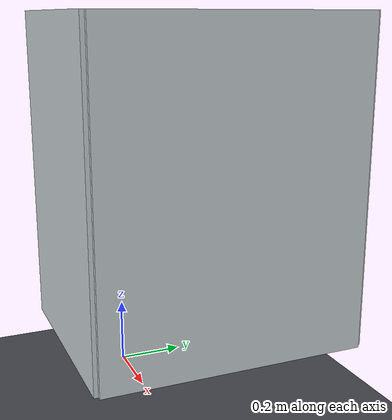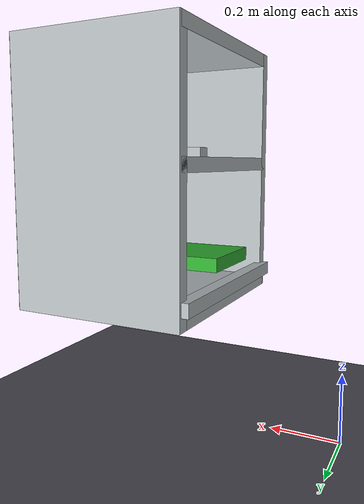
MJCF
<mujoco model="fridge_two_level">
  <compiler angle="radian" autolimits="true" boundmass="0" balanceinertia="true"/>
  <option impratio="10" gravity="0 0 -9.8" integrator="implicitfast" cone="elliptic" jacobian="sparse" noslip_iterations="4">
    <flag multiccd="enable" contact="enable" warmstart="enable"/>
  </option>
  <size njmax="5000" nconmax="5000"/>
  <visual>
    <global offwidth="1280" offheight="720"/>
    <map znear="0.001"/>
    <headlight ambient="0.45 0.45 0.45" diffuse="0.6 0.6 0.6"/>
  </visual>
  <default>
    <default class="cavity_struct">
      <geom contype="8" conaffinity="15" group="0" friction="0.9 0.9 0.001"
            solref="0.02 1" solimp="0.998 0.998 0.001" density="800" rgba="0.72 0.75 0.76 1"/>
    </default>
  </default>
  <worldbody>
    <light pos="0.5 0.5 3" dir="0 0 -1" diffuse="0.7 0.7 0.7"/>
    <geom name="floor" type="plane" size="5 5 0.1" pos="0 0 0" rgba="0.3 0.3 0.34 1"/>

    <body name="fridge" pos="0 0 0">
      <geom name="cab_floor" class="cavity_struct" type="box" pos="0.60 0 0.38" size="0.26 0.32 0.02"/>
      <geom name="cab_mid"   class="cavity_struct" type="box" pos="0.60 0 0.78" size="0.26 0.32 0.02"/>
      <geom name="cab_top"   class="cavity_struct" type="box" pos="0.60 0 1.12" size="0.26 0.32 0.02"/>
      <geom name="cab_back"  class="cavity_struct" type="box" pos="0.85 0 0.75" size="0.02 0.32 0.39"/>
      <geom name="cab_left"  class="cavity_struct" type="box" pos="0.60 0.31 0.75" size="0.26 0.02 0.39"/>
      <geom name="cab_right" class="cavity_struct" type="box" pos="0.60 -0.31 0.75" size="0.26 0.02 0.39"/>
      <geom name="cab_lower_lip" class="cavity_struct" type="box" pos="0.34 0 0.42" size="0.02 0.32 0.02"/>
      <geom name="upper_pick_stand" class="cavity_struct" type="box" pos="0.45 0 0.815" size="0.025 0.025 0.015"/>
    </body>

    <body name="place_pad" pos="0.45 0 0.50">
      <geom name="place_pad" type="box" size="0.12 0.12 0.02"
            rgba="0.2 0.7 0.2 1" contype="8" conaffinity="15" group="0"
            friction="1.0 0.9 0.001" solref="0.02 1" solimp="0.998 0.998 0.001" density="800"/>
    </body>
  </worldbody>
</mujoco>
